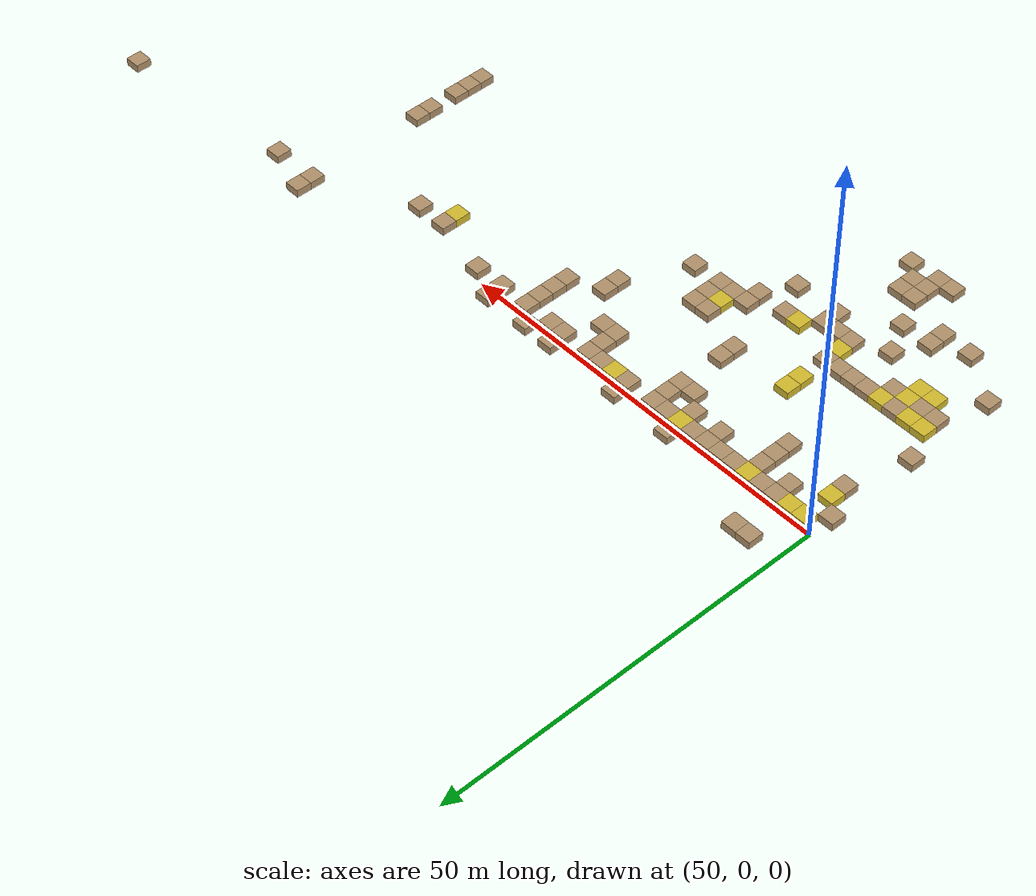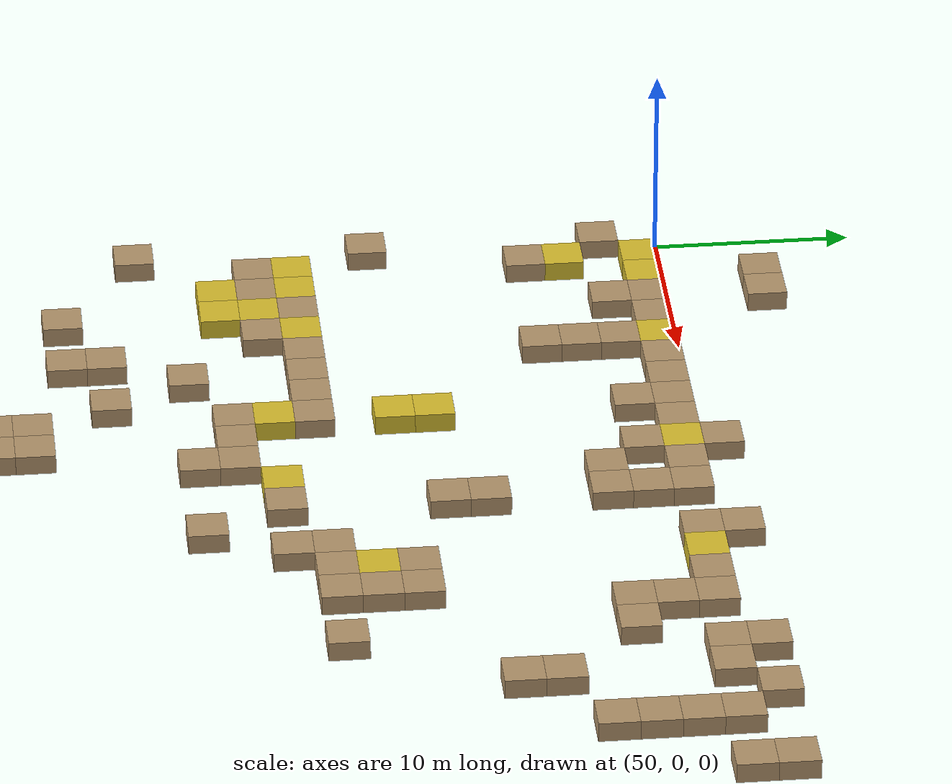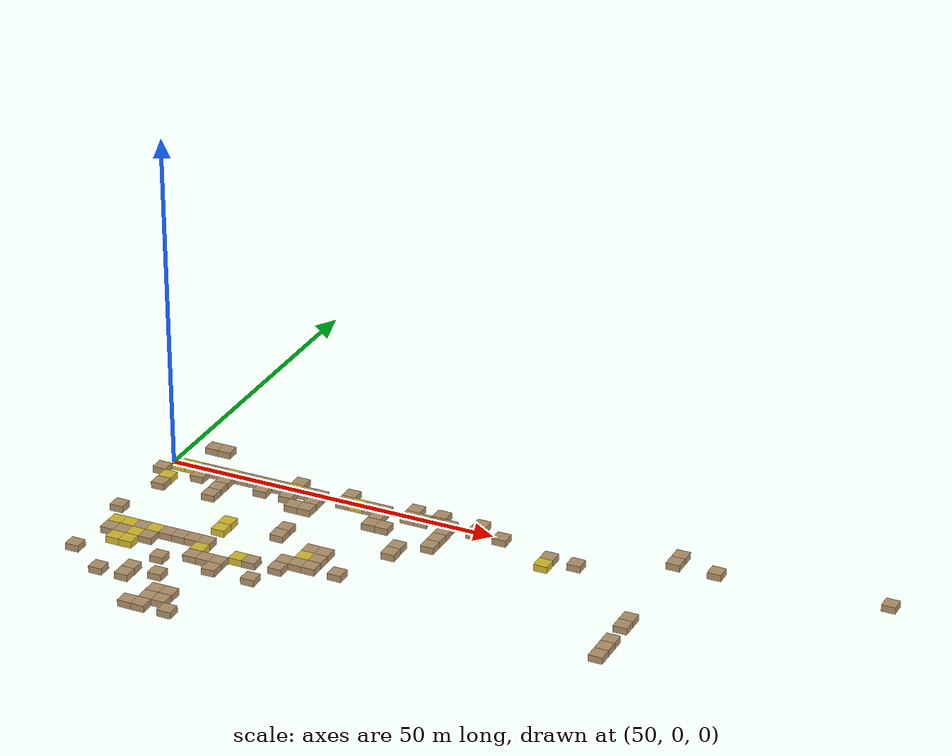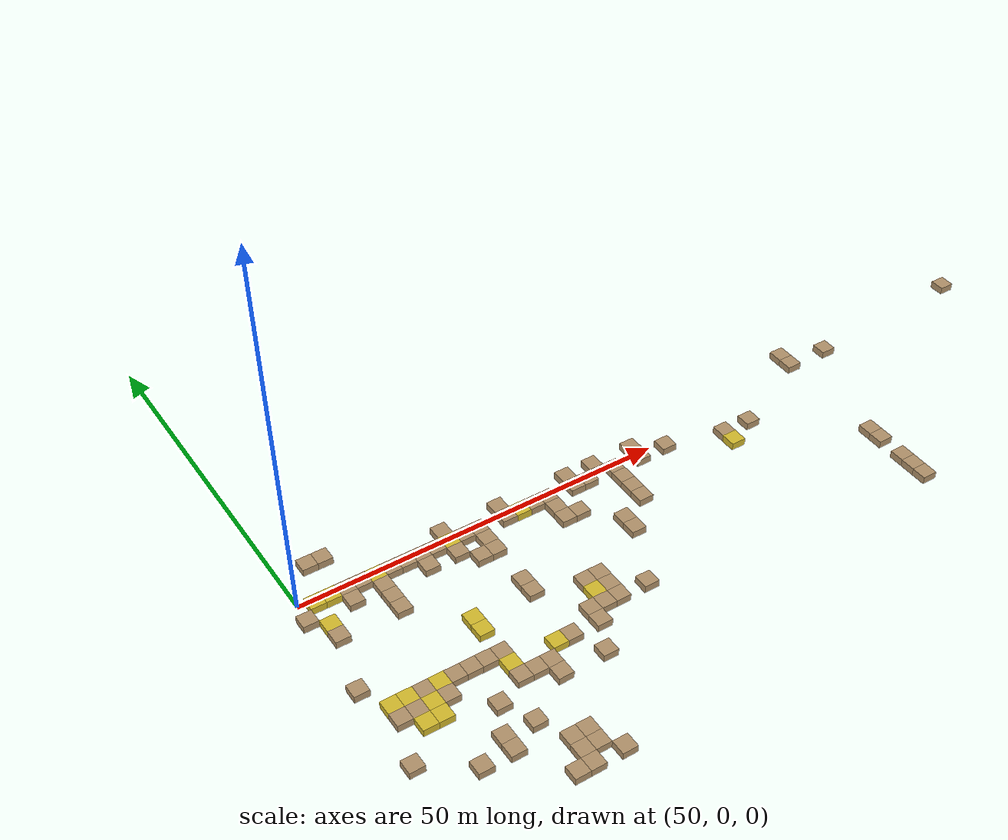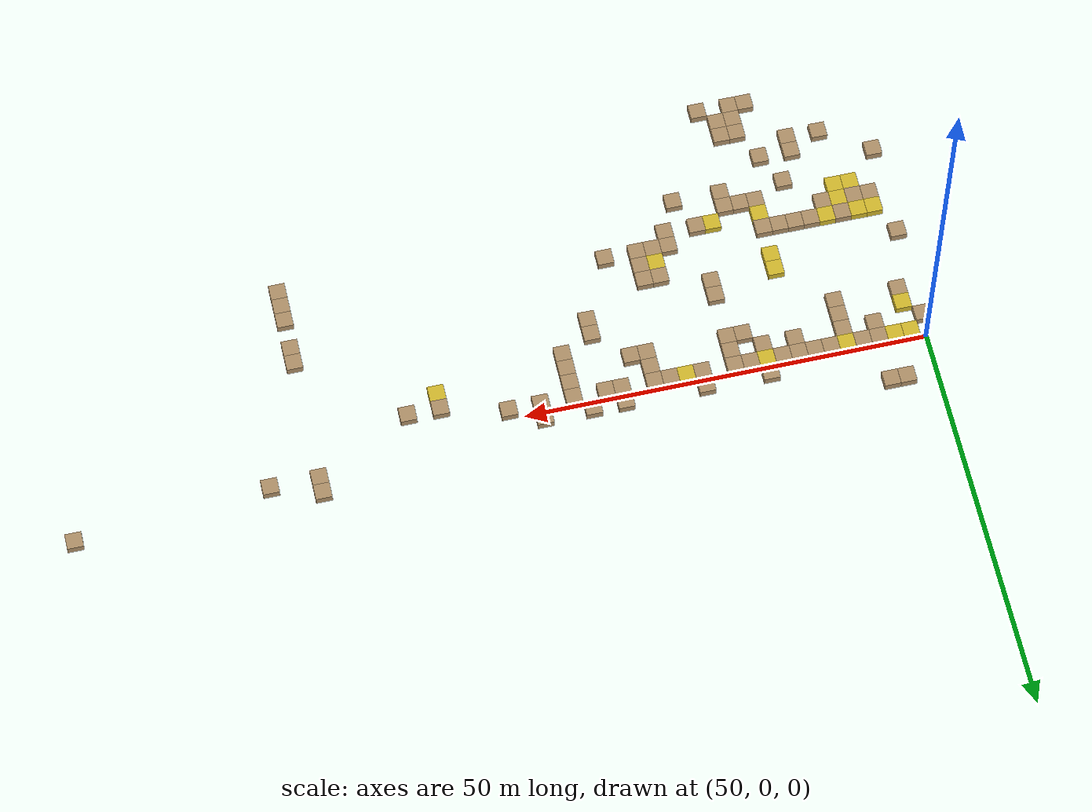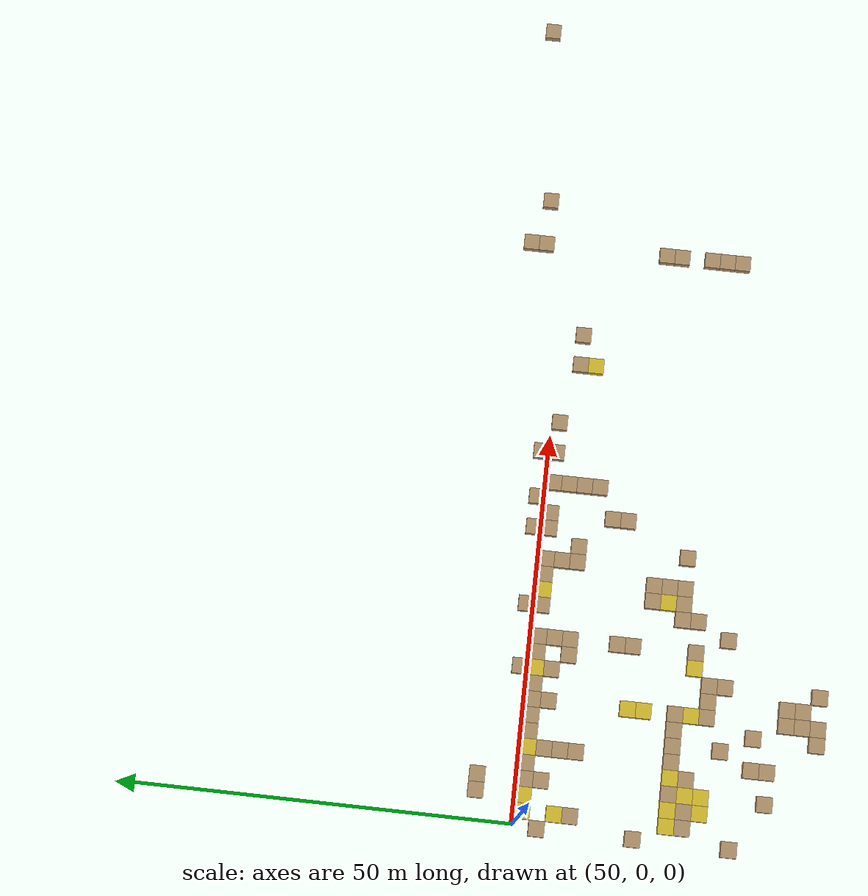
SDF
<sdf version="1.6">
 <world name="map5_factory_approx">
  <model name="map5_obstacle_blocks">
   <static>true</static>
   <link name="obs_0089_0030">
    <pose>69.790 -1.041 0.500 0 0 0</pose>
    <collision name="collision"><geometry><box><size>2.000 2.000 1.000</size></box></geometry></collision>
    <visual name="visual">
     <geometry><box><size>2.000 2.000 1.000</size></box></geometry>
     <material><ambient>0.84 0.74 0.18 1</ambient><diffuse>0.84 0.74 0.18 1</diffuse></material>
    </visual>
   </link>
   <link name="obs_0082_0040">
    <pose>55.790 -21.041 0.500 0 0 0</pose>
    <collision name="collision"><geometry><box><size>2.000 2.000 1.000</size></box></geometry></collision>
    <visual name="visual">
     <geometry><box><size>2.000 2.000 1.000</size></box></geometry>
     <material><ambient>0.84 0.74 0.18 1</ambient><diffuse>0.84 0.74 0.18 1</diffuse></material>
    </visual>
   </link>
   <link name="obs_0094_0038">
    <pose>79.790 -17.041 0.500 0 0 0</pose>
    <collision name="collision"><geometry><box><size>2.000 2.000 1.000</size></box></geometry></collision>
    <visual name="visual">
     <geometry><box><size>2.000 2.000 1.000</size></box></geometry>
     <material><ambient>0.84 0.74 0.18 1</ambient><diffuse>0.84 0.74 0.18 1</diffuse></material>
    </visual>
   </link>
   <link name="obs_0084_0030">
    <pose>59.790 -1.041 0.500 0 0 0</pose>
    <collision name="collision"><geometry><box><size>2.000 2.000 1.000</size></box></geometry></collision>
    <visual name="visual">
     <geometry><box><size>2.000 2.000 1.000</size></box></geometry>
     <material><ambient>0.84 0.74 0.18 1</ambient><diffuse>0.84 0.74 0.18 1</diffuse></material>
    </visual>
   </link>
   <link name="obs_0094_0030">
    <pose>79.790 -1.041 0.500 0 0 0</pose>
    <collision name="collision"><geometry><box><size>2.000 2.000 1.000</size></box></geometry></collision>
    <visual name="visual">
     <geometry><box><size>2.000 2.000 1.000</size></box></geometry>
     <material><ambient>0.84 0.74 0.18 1</ambient><diffuse>0.84 0.74 0.18 1</diffuse></material>
    </visual>
   </link>
   <link name="obs_0080_0032">
    <pose>51.790 -5.041 0.500 0 0 0</pose>
    <collision name="collision"><geometry><box><size>2.000 2.000 1.000</size></box></geometry></collision>
    <visual name="visual">
     <geometry><box><size>2.000 2.000 1.000</size></box></geometry>
     <material><ambient>0.84 0.74 0.18 1</ambient><diffuse>0.84 0.74 0.18 1</diffuse></material>
    </visual>
   </link>
   <link name="obs_0082_0041">
    <pose>55.790 -23.041 0.500 0 0 0</pose>
    <collision name="collision"><geometry><box><size>2.000 2.000 1.000</size></box></geometry></collision>
    <visual name="visual">
     <geometry><box><size>2.000 2.000 1.000</size></box></geometry>
     <material><ambient>0.84 0.74 0.18 1</ambient><diffuse>0.84 0.74 0.18 1</diffuse></material>
    </visual>
   </link>
   <link name="obs_0081_0041">
    <pose>53.790 -23.041 0.500 0 0 0</pose>
    <collision name="collision"><geometry><box><size>2.000 2.000 1.000</size></box></geometry></collision>
    <visual name="visual">
     <geometry><box><size>2.000 2.000 1.000</size></box></geometry>
     <material><ambient>0.84 0.74 0.18 1</ambient><diffuse>0.84 0.74 0.18 1</diffuse></material>
    </visual>
   </link>
   <link name="obs_0109_0032">
    <pose>109.790 -5.041 0.500 0 0 0</pose>
    <collision name="collision"><geometry><box><size>2.000 2.000 1.000</size></box></geometry></collision>
    <visual name="visual">
     <geometry><box><size>2.000 2.000 1.000</size></box></geometry>
     <material><ambient>0.84 0.74 0.18 1</ambient><diffuse>0.84 0.74 0.18 1</diffuse></material>
    </visual>
   </link>
   <link name="obs_0081_0039">
    <pose>53.790 -19.041 0.500 0 0 0</pose>
    <collision name="collision"><geometry><box><size>2.000 2.000 1.000</size></box></geometry></collision>
    <visual name="visual">
     <geometry><box><size>2.000 2.000 1.000</size></box></geometry>
     <material><ambient>0.84 0.74 0.18 1</ambient><diffuse>0.84 0.74 0.18 1</diffuse></material>
    </visual>
   </link>
   <link name="obs_0087_0040">
    <pose>65.790 -21.041 0.500 0 0 0</pose>
    <collision name="collision"><geometry><box><size>2.000 2.000 1.000</size></box></geometry></collision>
    <visual name="visual">
     <geometry><box><size>2.000 2.000 1.000</size></box></geometry>
     <material><ambient>0.84 0.74 0.18 1</ambient><diffuse>0.84 0.74 0.18 1</diffuse></material>
    </visual>
   </link>
   <link name="obs_0087_0037">
    <pose>65.790 -15.041 0.500 0 0 0</pose>
    <collision name="collision"><geometry><box><size>2.000 2.000 1.000</size></box></geometry></collision>
    <visual name="visual">
     <geometry><box><size>2.000 2.000 1.000</size></box></geometry>
     <material><ambient>0.84 0.74 0.18 1</ambient><diffuse>0.84 0.74 0.18 1</diffuse></material>
    </visual>
   </link>
   <link name="obs_0087_0036">
    <pose>65.790 -13.041 0.500 0 0 0</pose>
    <collision name="collision"><geometry><box><size>2.000 2.000 1.000</size></box></geometry></collision>
    <visual name="visual">
     <geometry><box><size>2.000 2.000 1.000</size></box></geometry>
     <material><ambient>0.84 0.74 0.18 1</ambient><diffuse>0.84 0.74 0.18 1</diffuse></material>
    </visual>
   </link>
   <link name="obs_0080_0030">
    <pose>51.790 -1.041 0.500 0 0 0</pose>
    <collision name="collision"><geometry><box><size>2.000 2.000 1.000</size></box></geometry></collision>
    <visual name="visual">
     <geometry><box><size>2.000 2.000 1.000</size></box></geometry>
     <material><ambient>0.84 0.74 0.18 1</ambient><diffuse>0.84 0.74 0.18 1</diffuse></material>
    </visual>
   </link>
   <link name="obs_0083_0039">
    <pose>57.790 -19.041 0.500 0 0 0</pose>
    <collision name="collision"><geometry><box><size>2.000 2.000 1.000</size></box></geometry></collision>
    <visual name="visual">
     <geometry><box><size>2.000 2.000 1.000</size></box></geometry>
     <material><ambient>0.84 0.74 0.18 1</ambient><diffuse>0.84 0.74 0.18 1</diffuse></material>
    </visual>
   </link>
   <link name="obs_0080_0039">
    <pose>51.790 -19.041 0.500 0 0 0</pose>
    <collision name="collision"><geometry><box><size>2.000 2.000 1.000</size></box></geometry></collision>
    <visual name="visual">
     <geometry><box><size>2.000 2.000 1.000</size></box></geometry>
     <material><ambient>0.84 0.74 0.18 1</ambient><diffuse>0.84 0.74 0.18 1</diffuse></material>
    </visual>
   </link>
   <link name="obs_0090_0040">
    <pose>71.790 -21.041 0.500 0 0 0</pose>
    <collision name="collision"><geometry><box><size>2.000 2.000 1.000</size></box></geometry></collision>
    <visual name="visual">
     <geometry><box><size>2.000 2.000 1.000</size></box></geometry>
     <material><ambient>0.84 0.74 0.18 1</ambient><diffuse>0.84 0.74 0.18 1</diffuse></material>
    </visual>
   </link>
   <link name="obs_0081_0030">
    <pose>53.790 -1.041 0.500 0 0 0</pose>
    <collision name="collision"><geometry><box><size>2.000 2.000 1.000</size></box></geometry></collision>
    <visual name="visual">
     <geometry><box><size>2.000 2.000 1.000</size></box></geometry>
     <material><ambient>0.84 0.74 0.18 1</ambient><diffuse>0.84 0.74 0.18 1</diffuse></material>
    </visual>
   </link>
   <link name="obs_0099_0030">
    <pose>89.790 -1.041 0.500 0 0 0</pose>
    <collision name="collision"><geometry><box><size>2.000 2.000 1.000</size></box></geometry></collision>
    <visual name="visual">
     <geometry><box><size>2.000 2.000 1.000</size></box></geometry>
     <material><ambient>0.70 0.58 0.42 1</ambient><diffuse>0.70 0.58 0.42 1</diffuse></material>
    </visual>
   </link>
   <link name="obs_0094_0037">
    <pose>79.790 -15.041 0.500 0 0 0</pose>
    <collision name="collision"><geometry><box><size>2.000 2.000 1.000</size></box></geometry></collision>
    <visual name="visual">
     <geometry><box><size>2.000 2.000 1.000</size></box></geometry>
     <material><ambient>0.70 0.58 0.42 1</ambient><diffuse>0.70 0.58 0.42 1</diffuse></material>
    </visual>
   </link>
   <link name="obs_0086_0030">
    <pose>63.790 -1.041 0.500 0 0 0</pose>
    <collision name="collision"><geometry><box><size>2.000 2.000 1.000</size></box></geometry></collision>
    <visual name="visual">
     <geometry><box><size>2.000 2.000 1.000</size></box></geometry>
     <material><ambient>0.70 0.58 0.42 1</ambient><diffuse>0.70 0.58 0.42 1</diffuse></material>
    </visual>
   </link>
   <link name="obs_0081_0040">
    <pose>53.790 -21.041 0.500 0 0 0</pose>
    <collision name="collision"><geometry><box><size>2.000 2.000 1.000</size></box></geometry></collision>
    <visual name="visual">
     <geometry><box><size>2.000 2.000 1.000</size></box></geometry>
     <material><ambient>0.70 0.58 0.42 1</ambient><diffuse>0.70 0.58 0.42 1</diffuse></material>
    </visual>
   </link>
   <link name="obs_0091_0030">
    <pose>73.790 -1.041 0.500 0 0 0</pose>
    <collision name="collision"><geometry><box><size>2.000 2.000 1.000</size></box></geometry></collision>
    <visual name="visual">
     <geometry><box><size>2.000 2.000 1.000</size></box></geometry>
     <material><ambient>0.70 0.58 0.42 1</ambient><diffuse>0.70 0.58 0.42 1</diffuse></material>
    </visual>
   </link>
   <link name="obs_0091_0036">
    <pose>73.790 -13.041 0.500 0 0 0</pose>
    <collision name="collision"><geometry><box><size>2.000 2.000 1.000</size></box></geometry></collision>
    <visual name="visual">
     <geometry><box><size>2.000 2.000 1.000</size></box></geometry>
     <material><ambient>0.70 0.58 0.42 1</ambient><diffuse>0.70 0.58 0.42 1</diffuse></material>
    </visual>
   </link>
   <link name="obs_0082_0039">
    <pose>55.790 -19.041 0.500 0 0 0</pose>
    <collision name="collision"><geometry><box><size>2.000 2.000 1.000</size></box></geometry></collision>
    <visual name="visual">
     <geometry><box><size>2.000 2.000 1.000</size></box></geometry>
     <material><ambient>0.70 0.58 0.42 1</ambient><diffuse>0.70 0.58 0.42 1</diffuse></material>
    </visual>
   </link>
   <link name="obs_0079_0031">
    <pose>49.790 -3.041 0.500 0 0 0</pose>
    <collision name="collision"><geometry><box><size>2.000 2.000 1.000</size></box></geometry></collision>
    <visual name="visual">
     <geometry><box><size>2.000 2.000 1.000</size></box></geometry>
     <material><ambient>0.70 0.58 0.42 1</ambient><diffuse>0.70 0.58 0.42 1</diffuse></material>
    </visual>
   </link>
   <link name="obs_0095_0037">
    <pose>81.790 -15.041 0.500 0 0 0</pose>
    <collision name="collision"><geometry><box><size>2.000 2.000 1.000</size></box></geometry></collision>
    <visual name="visual">
     <geometry><box><size>2.000 2.000 1.000</size></box></geometry>
     <material><ambient>0.70 0.58 0.42 1</ambient><diffuse>0.70 0.58 0.42 1</diffuse></material>
    </visual>
   </link>
   <link name="obs_0091_0032">
    <pose>73.790 -5.041 0.500 0 0 0</pose>
    <collision name="collision"><geometry><box><size>2.000 2.000 1.000</size></box></geometry></collision>
    <visual name="visual">
     <geometry><box><size>2.000 2.000 1.000</size></box></geometry>
     <material><ambient>0.70 0.58 0.42 1</ambient><diffuse>0.70 0.58 0.42 1</diffuse></material>
    </visual>
   </link>
   <link name="obs_0099_0034">
    <pose>89.790 -9.041 0.500 0 0 0</pose>
    <collision name="collision"><geometry><box><size>2.000 2.000 1.000</size></box></geometry></collision>
    <visual name="visual">
     <geometry><box><size>2.000 2.000 1.000</size></box></geometry>
     <material><ambient>0.70 0.58 0.42 1</ambient><diffuse>0.70 0.58 0.42 1</diffuse></material>
    </visual>
   </link>
   <link name="obs_0082_0030">
    <pose>55.790 -1.041 0.500 0 0 0</pose>
    <collision name="collision"><geometry><box><size>2.000 2.000 1.000</size></box></geometry></collision>
    <visual name="visual">
     <geometry><box><size>2.000 2.000 1.000</size></box></geometry>
     <material><ambient>0.70 0.58 0.42 1</ambient><diffuse>0.70 0.58 0.42 1</diffuse></material>
    </visual>
   </link>
   <link name="obs_0096_0030">
    <pose>83.790 -1.041 0.500 0 0 0</pose>
    <collision name="collision"><geometry><box><size>2.000 2.000 1.000</size></box></geometry></collision>
    <visual name="visual">
     <geometry><box><size>2.000 2.000 1.000</size></box></geometry>
     <material><ambient>0.70 0.58 0.42 1</ambient><diffuse>0.70 0.58 0.42 1</diffuse></material>
    </visual>
   </link>
   <link name="obs_0084_0039">
    <pose>59.790 -19.041 0.500 0 0 0</pose>
    <collision name="collision"><geometry><box><size>2.000 2.000 1.000</size></box></geometry></collision>
    <visual name="visual">
     <geometry><box><size>2.000 2.000 1.000</size></box></geometry>
     <material><ambient>0.70 0.58 0.42 1</ambient><diffuse>0.70 0.58 0.42 1</diffuse></material>
    </visual>
   </link>
   <link name="obs_0117_0040">
    <pose>125.790 -21.041 0.500 0 0 0</pose>
    <collision name="collision"><geometry><box><size>2.000 2.000 1.000</size></box></geometry></collision>
    <visual name="visual">
     <geometry><box><size>2.000 2.000 1.000</size></box></geometry>
     <material><ambient>0.70 0.58 0.42 1</ambient><diffuse>0.70 0.58 0.42 1</diffuse></material>
    </visual>
   </link>
   <link name="obs_0085_0030">
    <pose>61.790 -1.041 0.500 0 0 0</pose>
    <collision name="collision"><geometry><box><size>2.000 2.000 1.000</size></box></geometry></collision>
    <visual name="visual">
     <geometry><box><size>2.000 2.000 1.000</size></box></geometry>
     <material><ambient>0.70 0.58 0.42 1</ambient><diffuse>0.70 0.58 0.42 1</diffuse></material>
    </visual>
   </link>
   <link name="obs_0082_0031">
    <pose>55.790 -3.041 0.500 0 0 0</pose>
    <collision name="collision"><geometry><box><size>2.000 2.000 1.000</size></box></geometry></collision>
    <visual name="visual">
     <geometry><box><size>2.000 2.000 1.000</size></box></geometry>
     <material><ambient>0.70 0.58 0.42 1</ambient><diffuse>0.70 0.58 0.42 1</diffuse></material>
    </visual>
   </link>
   <link name="obs_0103_0029">
    <pose>97.790 0.959 0.500 0 0 0</pose>
    <collision name="collision"><geometry><box><size>2.000 2.000 1.000</size></box></geometry></collision>
    <visual name="visual">
     <geometry><box><size>2.000 2.000 1.000</size></box></geometry>
     <material><ambient>0.70 0.58 0.42 1</ambient><diffuse>0.70 0.58 0.42 1</diffuse></material>
    </visual>
   </link>
   <link name="obs_0101_0032">
    <pose>93.790 -5.041 0.500 0 0 0</pose>
    <collision name="collision"><geometry><box><size>2.000 2.000 1.000</size></box></geometry></collision>
    <visual name="visual">
     <geometry><box><size>2.000 2.000 1.000</size></box></geometry>
     <material><ambient>0.70 0.58 0.42 1</ambient><diffuse>0.70 0.58 0.42 1</diffuse></material>
    </visual>
   </link>
   <link name="obs_0095_0039">
    <pose>81.790 -19.041 0.500 0 0 0</pose>
    <collision name="collision"><geometry><box><size>2.000 2.000 1.000</size></box></geometry></collision>
    <visual name="visual">
     <geometry><box><size>2.000 2.000 1.000</size></box></geometry>
     <material><ambient>0.70 0.58 0.42 1</ambient><diffuse>0.70 0.58 0.42 1</diffuse></material>
    </visual>
   </link>
   <link name="obs_0088_0030">
    <pose>67.790 -1.041 0.500 0 0 0</pose>
    <collision name="collision"><geometry><box><size>2.000 2.000 1.000</size></box></geometry></collision>
    <visual name="visual">
     <geometry><box><size>2.000 2.000 1.000</size></box></geometry>
     <material><ambient>0.70 0.58 0.42 1</ambient><diffuse>0.70 0.58 0.42 1</diffuse></material>
    </visual>
   </link>
   <link name="obs_0082_0045">
    <pose>55.790 -31.041 0.500 0 0 0</pose>
    <collision name="collision"><geometry><box><size>2.000 2.000 1.000</size></box></geometry></collision>
    <visual name="visual">
     <geometry><box><size>2.000 2.000 1.000</size></box></geometry>
     <material><ambient>0.70 0.58 0.42 1</ambient><diffuse>0.70 0.58 0.42 1</diffuse></material>
    </visual>
   </link>
   <link name="obs_0094_0039">
    <pose>79.790 -19.041 0.500 0 0 0</pose>
    <collision name="collision"><geometry><box><size>2.000 2.000 1.000</size></box></geometry></collision>
    <visual name="visual">
     <geometry><box><size>2.000 2.000 1.000</size></box></geometry>
     <material><ambient>0.70 0.58 0.42 1</ambient><diffuse>0.70 0.58 0.42 1</diffuse></material>
    </visual>
   </link>
   <link name="obs_0090_0030">
    <pose>71.790 -1.041 0.500 0 0 0</pose>
    <collision name="collision"><geometry><box><size>2.000 2.000 1.000</size></box></geometry></collision>
    <visual name="visual">
     <geometry><box><size>2.000 2.000 1.000</size></box></geometry>
     <material><ambient>0.70 0.58 0.42 1</ambient><diffuse>0.70 0.58 0.42 1</diffuse></material>
    </visual>
   </link>
   <link name="obs_0117_0036">
    <pose>125.790 -13.041 0.500 0 0 0</pose>
    <collision name="collision"><geometry><box><size>2.000 2.000 1.000</size></box></geometry></collision>
    <visual name="visual">
     <geometry><box><size>2.000 2.000 1.000</size></box></geometry>
     <material><ambient>0.70 0.58 0.42 1</ambient><diffuse>0.70 0.58 0.42 1</diffuse></material>
    </visual>
   </link>
   <link name="obs_0087_0039">
    <pose>65.790 -19.041 0.500 0 0 0</pose>
    <collision name="collision"><geometry><box><size>2.000 2.000 1.000</size></box></geometry></collision>
    <visual name="visual">
     <geometry><box><size>2.000 2.000 1.000</size></box></geometry>
     <material><ambient>0.70 0.58 0.42 1</ambient><diffuse>0.70 0.58 0.42 1</diffuse></material>
    </visual>
   </link>
   <link name="obs_0084_0031">
    <pose>59.790 -3.041 0.500 0 0 0</pose>
    <collision name="collision"><geometry><box><size>2.000 2.000 1.000</size></box></geometry></collision>
    <visual name="visual">
     <geometry><box><size>2.000 2.000 1.000</size></box></geometry>
     <material><ambient>0.70 0.58 0.42 1</ambient><diffuse>0.70 0.58 0.42 1</diffuse></material>
    </visual>
   </link>
   <link name="obs_0083_0030">
    <pose>57.790 -1.041 0.500 0 0 0</pose>
    <collision name="collision"><geometry><box><size>2.000 2.000 1.000</size></box></geometry></collision>
    <visual name="visual">
     <geometry><box><size>2.000 2.000 1.000</size></box></geometry>
     <material><ambient>0.70 0.58 0.42 1</ambient><diffuse>0.70 0.58 0.42 1</diffuse></material>
    </visual>
   </link>
   <link name="obs_0096_0031">
    <pose>83.790 -3.041 0.500 0 0 0</pose>
    <collision name="collision"><geometry><box><size>2.000 2.000 1.000</size></box></geometry></collision>
    <visual name="visual">
     <geometry><box><size>2.000 2.000 1.000</size></box></geometry>
     <material><ambient>0.70 0.58 0.42 1</ambient><diffuse>0.70 0.58 0.42 1</diffuse></material>
    </visual>
   </link>
   <link name="obs_0085_0039">
    <pose>61.790 -19.041 0.500 0 0 0</pose>
    <collision name="collision"><geometry><box><size>2.000 2.000 1.000</size></box></geometry></collision>
    <visual name="visual">
     <geometry><box><size>2.000 2.000 1.000</size></box></geometry>
     <material><ambient>0.70 0.58 0.42 1</ambient><diffuse>0.70 0.58 0.42 1</diffuse></material>
    </visual>
   </link>
   <link name="obs_0105_0030">
    <pose>101.790 -1.041 0.500 0 0 0</pose>
    <collision name="collision"><geometry><box><size>2.000 2.000 1.000</size></box></geometry></collision>
    <visual name="visual">
     <geometry><box><size>2.000 2.000 1.000</size></box></geometry>
     <material><ambient>0.70 0.58 0.42 1</ambient><diffuse>0.70 0.58 0.42 1</diffuse></material>
    </visual>
   </link>
   <link name="obs_0109_0031">
    <pose>109.790 -3.041 0.500 0 0 0</pose>
    <collision name="collision"><geometry><box><size>2.000 2.000 1.000</size></box></geometry></collision>
    <visual name="visual">
     <geometry><box><size>2.000 2.000 1.000</size></box></geometry>
     <material><ambient>0.70 0.58 0.42 1</ambient><diffuse>0.70 0.58 0.42 1</diffuse></material>
    </visual>
   </link>
   <link name="obs_0080_0040">
    <pose>51.790 -21.041 0.500 0 0 0</pose>
    <collision name="collision"><geometry><box><size>2.000 2.000 1.000</size></box></geometry></collision>
    <visual name="visual">
     <geometry><box><size>2.000 2.000 1.000</size></box></geometry>
     <material><ambient>0.70 0.58 0.42 1</ambient><diffuse>0.70 0.58 0.42 1</diffuse></material>
    </visual>
   </link>
   <link name="obs_0098_0029">
    <pose>87.790 0.959 0.500 0 0 0</pose>
    <collision name="collision"><geometry><box><size>2.000 2.000 1.000</size></box></geometry></collision>
    <visual name="visual">
     <geometry><box><size>2.000 2.000 1.000</size></box></geometry>
     <material><ambient>0.70 0.58 0.42 1</ambient><diffuse>0.70 0.58 0.42 1</diffuse></material>
    </visual>
   </link>
   <link name="obs_0096_0032">
    <pose>83.790 -5.041 0.500 0 0 0</pose>
    <collision name="collision"><geometry><box><size>2.000 2.000 1.000</size></box></geometry></collision>
    <visual name="visual">
     <geometry><box><size>2.000 2.000 1.000</size></box></geometry>
     <material><ambient>0.70 0.58 0.42 1</ambient><diffuse>0.70 0.58 0.42 1</diffuse></material>
    </visual>
   </link>
   <link name="obs_0091_0031">
    <pose>73.790 -3.041 0.500 0 0 0</pose>
    <collision name="collision"><geometry><box><size>2.000 2.000 1.000</size></box></geometry></collision>
    <visual name="visual">
     <geometry><box><size>2.000 2.000 1.000</size></box></geometry>
     <material><ambient>0.70 0.58 0.42 1</ambient><diffuse>0.70 0.58 0.42 1</diffuse></material>
    </visual>
   </link>
   <link name="obs_0090_0032">
    <pose>71.790 -5.041 0.500 0 0 0</pose>
    <collision name="collision"><geometry><box><size>2.000 2.000 1.000</size></box></geometry></collision>
    <visual name="visual">
     <geometry><box><size>2.000 2.000 1.000</size></box></geometry>
     <material><ambient>0.70 0.58 0.42 1</ambient><diffuse>0.70 0.58 0.42 1</diffuse></material>
    </visual>
   </link>
   <link name="obs_0087_0031">
    <pose>65.790 -3.041 0.500 0 0 0</pose>
    <collision name="collision"><geometry><box><size>2.000 2.000 1.000</size></box></geometry></collision>
    <visual name="visual">
     <geometry><box><size>2.000 2.000 1.000</size></box></geometry>
     <material><ambient>0.70 0.58 0.42 1</ambient><diffuse>0.70 0.58 0.42 1</diffuse></material>
    </visual>
   </link>
   <link name="obs_0084_0032">
    <pose>59.790 -5.041 0.500 0 0 0</pose>
    <collision name="collision"><geometry><box><size>2.000 2.000 1.000</size></box></geometry></collision>
    <visual name="visual">
     <geometry><box><size>2.000 2.000 1.000</size></box></geometry>
     <material><ambient>0.70 0.58 0.42 1</ambient><diffuse>0.70 0.58 0.42 1</diffuse></material>
    </visual>
   </link>
   <link name="obs_0095_0038">
    <pose>81.790 -17.041 0.500 0 0 0</pose>
    <collision name="collision"><geometry><box><size>2.000 2.000 1.000</size></box></geometry></collision>
    <visual name="visual">
     <geometry><box><size>2.000 2.000 1.000</size></box></geometry>
     <material><ambient>0.70 0.58 0.42 1</ambient><diffuse>0.70 0.58 0.42 1</diffuse></material>
    </visual>
   </link>
   <link name="obs_0117_0037">
    <pose>125.790 -15.041 0.500 0 0 0</pose>
    <collision name="collision"><geometry><box><size>2.000 2.000 1.000</size></box></geometry></collision>
    <visual name="visual">
     <geometry><box><size>2.000 2.000 1.000</size></box></geometry>
     <material><ambient>0.70 0.58 0.42 1</ambient><diffuse>0.70 0.58 0.42 1</diffuse></material>
    </visual>
   </link>
   <link name="obs_0101_0031">
    <pose>93.790 -3.041 0.500 0 0 0</pose>
    <collision name="collision"><geometry><box><size>2.000 2.000 1.000</size></box></geometry></collision>
    <visual name="visual">
     <geometry><box><size>2.000 2.000 1.000</size></box></geometry>
     <material><ambient>0.70 0.58 0.42 1</ambient><diffuse>0.70 0.58 0.42 1</diffuse></material>
    </visual>
   </link>
   <link name="obs_0097_0032">
    <pose>85.790 -5.041 0.500 0 0 0</pose>
    <collision name="collision"><geometry><box><size>2.000 2.000 1.000</size></box></geometry></collision>
    <visual name="visual">
     <geometry><box><size>2.000 2.000 1.000</size></box></geometry>
     <material><ambient>0.70 0.58 0.42 1</ambient><diffuse>0.70 0.58 0.42 1</diffuse></material>
    </visual>
   </link>
   <link name="obs_0088_0041">
    <pose>67.790 -23.041 0.500 0 0 0</pose>
    <collision name="collision"><geometry><box><size>2.000 2.000 1.000</size></box></geometry></collision>
    <visual name="visual">
     <geometry><box><size>2.000 2.000 1.000</size></box></geometry>
     <material><ambient>0.70 0.58 0.42 1</ambient><diffuse>0.70 0.58 0.42 1</diffuse></material>
    </visual>
   </link>
   <link name="obs_0082_0027">
    <pose>55.790 4.959 0.500 0 0 0</pose>
    <collision name="collision"><geometry><box><size>2.000 2.000 1.000</size></box></geometry></collision>
    <visual name="visual">
     <geometry><box><size>2.000 2.000 1.000</size></box></geometry>
     <material><ambient>0.70 0.58 0.42 1</ambient><diffuse>0.70 0.58 0.42 1</diffuse></material>
    </visual>
   </link>
   <link name="obs_0117_0039">
    <pose>125.790 -19.041 0.500 0 0 0</pose>
    <collision name="collision"><geometry><box><size>2.000 2.000 1.000</size></box></geometry></collision>
    <visual name="visual">
     <geometry><box><size>2.000 2.000 1.000</size></box></geometry>
     <material><ambient>0.70 0.58 0.42 1</ambient><diffuse>0.70 0.58 0.42 1</diffuse></material>
    </visual>
   </link>
   <link name="obs_0101_0030">
    <pose>93.790 -1.041 0.500 0 0 0</pose>
    <collision name="collision"><geometry><box><size>2.000 2.000 1.000</size></box></geometry></collision>
    <visual name="visual">
     <geometry><box><size>2.000 2.000 1.000</size></box></geometry>
     <material><ambient>0.70 0.58 0.42 1</ambient><diffuse>0.70 0.58 0.42 1</diffuse></material>
    </visual>
   </link>
   <link name="obs_0093_0040">
    <pose>77.790 -21.041 0.500 0 0 0</pose>
    <collision name="collision"><geometry><box><size>2.000 2.000 1.000</size></box></geometry></collision>
    <visual name="visual">
     <geometry><box><size>2.000 2.000 1.000</size></box></geometry>
     <material><ambient>0.70 0.58 0.42 1</ambient><diffuse>0.70 0.58 0.42 1</diffuse></material>
    </visual>
   </link>
   <link name="obs_0089_0031">
    <pose>69.790 -3.041 0.500 0 0 0</pose>
    <collision name="collision"><geometry><box><size>2.000 2.000 1.000</size></box></geometry></collision>
    <visual name="visual">
     <geometry><box><size>2.000 2.000 1.000</size></box></geometry>
     <material><ambient>0.70 0.58 0.42 1</ambient><diffuse>0.70 0.58 0.42 1</diffuse></material>
    </visual>
   </link>
   <link name="obs_0093_0039">
    <pose>77.790 -19.041 0.500 0 0 0</pose>
    <collision name="collision"><geometry><box><size>2.000 2.000 1.000</size></box></geometry></collision>
    <visual name="visual">
     <geometry><box><size>2.000 2.000 1.000</size></box></geometry>
     <material><ambient>0.70 0.58 0.42 1</ambient><diffuse>0.70 0.58 0.42 1</diffuse></material>
    </visual>
   </link>
   <link name="obs_0093_0030">
    <pose>77.790 -1.041 0.500 0 0 0</pose>
    <collision name="collision"><geometry><box><size>2.000 2.000 1.000</size></box></geometry></collision>
    <visual name="visual">
     <geometry><box><size>2.000 2.000 1.000</size></box></geometry>
     <material><ambient>0.70 0.58 0.42 1</ambient><diffuse>0.70 0.58 0.42 1</diffuse></material>
    </visual>
   </link>
   <link name="obs_0088_0047">
    <pose>67.790 -35.041 0.500 0 0 0</pose>
    <collision name="collision"><geometry><box><size>2.000 2.000 1.000</size></box></geometry></collision>
    <visual name="visual">
     <geometry><box><size>2.000 2.000 1.000</size></box></geometry>
     <material><ambient>0.70 0.58 0.42 1</ambient><diffuse>0.70 0.58 0.42 1</diffuse></material>
    </visual>
   </link>
   <link name="obs_0087_0030">
    <pose>65.790 -1.041 0.500 0 0 0</pose>
    <collision name="collision"><geometry><box><size>2.000 2.000 1.000</size></box></geometry></collision>
    <visual name="visual">
     <geometry><box><size>2.000 2.000 1.000</size></box></geometry>
     <material><ambient>0.70 0.58 0.42 1</ambient><diffuse>0.70 0.58 0.42 1</diffuse></material>
    </visual>
   </link>
   <link name="obs_0097_0039">
    <pose>85.790 -19.041 0.500 0 0 0</pose>
    <collision name="collision"><geometry><box><size>2.000 2.000 1.000</size></box></geometry></collision>
    <visual name="visual">
     <geometry><box><size>2.000 2.000 1.000</size></box></geometry>
     <material><ambient>0.70 0.58 0.42 1</ambient><diffuse>0.70 0.58 0.42 1</diffuse></material>
    </visual>
   </link>
   <link name="obs_0084_0045">
    <pose>59.790 -31.041 0.500 0 0 0</pose>
    <collision name="collision"><geometry><box><size>2.000 2.000 1.000</size></box></geometry></collision>
    <visual name="visual">
     <geometry><box><size>2.000 2.000 1.000</size></box></geometry>
     <material><ambient>0.70 0.58 0.42 1</ambient><diffuse>0.70 0.58 0.42 1</diffuse></material>
    </visual>
   </link>
   <link name="obs_0120_0028">
    <pose>131.790 2.959 0.500 0 0 0</pose>
    <collision name="collision"><geometry><box><size>2.000 2.000 1.000</size></box></geometry></collision>
    <visual name="visual">
     <geometry><box><size>2.000 2.000 1.000</size></box></geometry>
     <material><ambient>0.70 0.58 0.42 1</ambient><diffuse>0.70 0.58 0.42 1</diffuse></material>
    </visual>
   </link>
   <link name="obs_0117_0028">
    <pose>125.790 2.959 0.500 0 0 0</pose>
    <collision name="collision"><geometry><box><size>2.000 2.000 1.000</size></box></geometry></collision>
    <visual name="visual">
     <geometry><box><size>2.000 2.000 1.000</size></box></geometry>
     <material><ambient>0.70 0.58 0.42 1</ambient><diffuse>0.70 0.58 0.42 1</diffuse></material>
    </visual>
   </link>
   <link name="obs_0098_0030">
    <pose>87.790 -1.041 0.500 0 0 0</pose>
    <collision name="collision"><geometry><box><size>2.000 2.000 1.000</size></box></geometry></collision>
    <visual name="visual">
     <geometry><box><size>2.000 2.000 1.000</size></box></geometry>
     <material><ambient>0.70 0.58 0.42 1</ambient><diffuse>0.70 0.58 0.42 1</diffuse></material>
    </visual>
   </link>
   <link name="obs_0081_0027">
    <pose>53.790 4.959 0.500 0 0 0</pose>
    <collision name="collision"><geometry><box><size>2.000 2.000 1.000</size></box></geometry></collision>
    <visual name="visual">
     <geometry><box><size>2.000 2.000 1.000</size></box></geometry>
     <material><ambient>0.70 0.58 0.42 1</ambient><diffuse>0.70 0.58 0.42 1</diffuse></material>
    </visual>
   </link>
   <link name="obs_0117_0027">
    <pose>125.790 4.959 0.500 0 0 0</pose>
    <collision name="collision"><geometry><box><size>2.000 2.000 1.000</size></box></geometry></collision>
    <visual name="visual">
     <geometry><box><size>2.000 2.000 1.000</size></box></geometry>
     <material><ambient>0.70 0.58 0.42 1</ambient><diffuse>0.70 0.58 0.42 1</diffuse></material>
    </visual>
   </link>
   <link name="obs_0092_0042">
    <pose>75.790 -25.041 0.500 0 0 0</pose>
    <collision name="collision"><geometry><box><size>2.000 2.000 1.000</size></box></geometry></collision>
    <visual name="visual">
     <geometry><box><size>2.000 2.000 1.000</size></box></geometry>
     <material><ambient>0.70 0.58 0.42 1</ambient><diffuse>0.70 0.58 0.42 1</diffuse></material>
    </visual>
   </link>
   <link name="obs_0091_0035">
    <pose>73.790 -11.041 0.500 0 0 0</pose>
    <collision name="collision"><geometry><box><size>2.000 2.000 1.000</size></box></geometry></collision>
    <visual name="visual">
     <geometry><box><size>2.000 2.000 1.000</size></box></geometry>
     <material><ambient>0.70 0.58 0.42 1</ambient><diffuse>0.70 0.58 0.42 1</diffuse></material>
    </visual>
   </link>
   <link name="obs_0087_0041">
    <pose>65.790 -23.041 0.500 0 0 0</pose>
    <collision name="collision"><geometry><box><size>2.000 2.000 1.000</size></box></geometry></collision>
    <visual name="visual">
     <geometry><box><size>2.000 2.000 1.000</size></box></geometry>
     <material><ambient>0.70 0.58 0.42 1</ambient><diffuse>0.70 0.58 0.42 1</diffuse></material>
    </visual>
   </link>
   <link name="obs_0086_0039">
    <pose>63.790 -19.041 0.500 0 0 0</pose>
    <collision name="collision"><geometry><box><size>2.000 2.000 1.000</size></box></geometry></collision>
    <visual name="visual">
     <geometry><box><size>2.000 2.000 1.000</size></box></geometry>
     <material><ambient>0.70 0.58 0.42 1</ambient><diffuse>0.70 0.58 0.42 1</diffuse></material>
    </visual>
   </link>
   <link name="obs_0103_0030">
    <pose>97.790 -1.041 0.500 0 0 0</pose>
    <collision name="collision"><geometry><box><size>2.000 2.000 1.000</size></box></geometry></collision>
    <visual name="visual">
     <geometry><box><size>2.000 2.000 1.000</size></box></geometry>
     <material><ambient>0.70 0.58 0.42 1</ambient><diffuse>0.70 0.58 0.42 1</diffuse></material>
    </visual>
   </link>
   <link name="obs_0099_0035">
    <pose>89.790 -11.041 0.500 0 0 0</pose>
    <collision name="collision"><geometry><box><size>2.000 2.000 1.000</size></box></geometry></collision>
    <visual name="visual">
     <geometry><box><size>2.000 2.000 1.000</size></box></geometry>
     <material><ambient>0.70 0.58 0.42 1</ambient><diffuse>0.70 0.58 0.42 1</diffuse></material>
    </visual>
   </link>
   <link name="obs_0091_0040">
    <pose>73.790 -21.041 0.500 0 0 0</pose>
    <collision name="collision"><geometry><box><size>2.000 2.000 1.000</size></box></geometry></collision>
    <visual name="visual">
     <geometry><box><size>2.000 2.000 1.000</size></box></geometry>
     <material><ambient>0.70 0.58 0.42 1</ambient><diffuse>0.70 0.58 0.42 1</diffuse></material>
    </visual>
   </link>
   <link name="obs_0089_0048">
    <pose>69.790 -37.041 0.500 0 0 0</pose>
    <collision name="collision"><geometry><box><size>2.000 2.000 1.000</size></box></geometry></collision>
    <visual name="visual">
     <geometry><box><size>2.000 2.000 1.000</size></box></geometry>
     <material><ambient>0.70 0.58 0.42 1</ambient><diffuse>0.70 0.58 0.42 1</diffuse></material>
    </visual>
   </link>
   <link name="obs_0086_0048">
    <pose>63.790 -37.041 0.500 0 0 0</pose>
    <collision name="collision"><geometry><box><size>2.000 2.000 1.000</size></box></geometry></collision>
    <visual name="visual">
     <geometry><box><size>2.000 2.000 1.000</size></box></geometry>
     <material><ambient>0.70 0.58 0.42 1</ambient><diffuse>0.70 0.58 0.42 1</diffuse></material>
    </visual>
   </link>
   <link name="obs_0084_0033">
    <pose>59.790 -7.041 0.500 0 0 0</pose>
    <collision name="collision"><geometry><box><size>2.000 2.000 1.000</size></box></geometry></collision>
    <visual name="visual">
     <geometry><box><size>2.000 2.000 1.000</size></box></geometry>
     <material><ambient>0.70 0.58 0.42 1</ambient><diffuse>0.70 0.58 0.42 1</diffuse></material>
    </visual>
   </link>
   <link name="obs_0089_0042">
    <pose>69.790 -25.041 0.500 0 0 0</pose>
    <collision name="collision"><geometry><box><size>2.000 2.000 1.000</size></box></geometry></collision>
    <visual name="visual">
     <geometry><box><size>2.000 2.000 1.000</size></box></geometry>
     <material><ambient>0.70 0.58 0.42 1</ambient><diffuse>0.70 0.58 0.42 1</diffuse></material>
    </visual>
   </link>
   <link name="obs_0087_0046">
    <pose>65.790 -33.041 0.500 0 0 0</pose>
    <collision name="collision"><geometry><box><size>2.000 2.000 1.000</size></box></geometry></collision>
    <visual name="visual">
     <geometry><box><size>2.000 2.000 1.000</size></box></geometry>
     <material><ambient>0.70 0.58 0.42 1</ambient><diffuse>0.70 0.58 0.42 1</diffuse></material>
    </visual>
   </link>
   <link name="obs_0079_0043">
    <pose>49.790 -27.041 0.500 0 0 0</pose>
    <collision name="collision"><geometry><box><size>2.000 2.000 1.000</size></box></geometry></collision>
    <visual name="visual">
     <geometry><box><size>2.000 2.000 1.000</size></box></geometry>
     <material><ambient>0.70 0.58 0.42 1</ambient><diffuse>0.70 0.58 0.42 1</diffuse></material>
    </visual>
   </link>
   <link name="obs_0079_0037">
    <pose>49.790 -15.041 0.500 0 0 0</pose>
    <collision name="collision"><geometry><box><size>2.000 2.000 1.000</size></box></geometry></collision>
    <visual name="visual">
     <geometry><box><size>2.000 2.000 1.000</size></box></geometry>
     <material><ambient>0.70 0.58 0.42 1</ambient><diffuse>0.70 0.58 0.42 1</diffuse></material>
    </visual>
   </link>
   <link name="obs_0111_0031">
    <pose>113.790 -3.041 0.500 0 0 0</pose>
    <collision name="collision"><geometry><box><size>2.000 2.000 1.000</size></box></geometry></collision>
    <visual name="visual">
     <geometry><box><size>2.000 2.000 1.000</size></box></geometry>
     <material><ambient>0.70 0.58 0.42 1</ambient><diffuse>0.70 0.58 0.42 1</diffuse></material>
    </visual>
   </link>
   <link name="obs_0095_0030">
    <pose>81.790 -1.041 0.500 0 0 0</pose>
    <collision name="collision"><geometry><box><size>2.000 2.000 1.000</size></box></geometry></collision>
    <visual name="visual">
     <geometry><box><size>2.000 2.000 1.000</size></box></geometry>
     <material><ambient>0.70 0.58 0.42 1</ambient><diffuse>0.70 0.58 0.42 1</diffuse></material>
    </visual>
   </link>
   <link name="obs_0087_0047">
    <pose>65.790 -35.041 0.500 0 0 0</pose>
    <collision name="collision"><geometry><box><size>2.000 2.000 1.000</size></box></geometry></collision>
    <visual name="visual">
     <geometry><box><size>2.000 2.000 1.000</size></box></geometry>
     <material><ambient>0.70 0.58 0.42 1</ambient><diffuse>0.70 0.58 0.42 1</diffuse></material>
    </visual>
   </link>
   <link name="obs_0085_0042">
    <pose>61.790 -25.041 0.500 0 0 0</pose>
    <collision name="collision"><geometry><box><size>2.000 2.000 1.000</size></box></geometry></collision>
    <visual name="visual">
     <geometry><box><size>2.000 2.000 1.000</size></box></geometry>
     <material><ambient>0.70 0.58 0.42 1</ambient><diffuse>0.70 0.58 0.42 1</diffuse></material>
    </visual>
   </link>
   <link name="obs_0087_0048">
    <pose>65.790 -37.041 0.500 0 0 0</pose>
    <collision name="collision"><geometry><box><size>2.000 2.000 1.000</size></box></geometry></collision>
    <visual name="visual">
     <geometry><box><size>2.000 2.000 1.000</size></box></geometry>
     <material><ambient>0.70 0.58 0.42 1</ambient><diffuse>0.70 0.58 0.42 1</diffuse></material>
    </visual>
   </link>
   <link name="obs_0083_0040">
    <pose>57.790 -21.041 0.500 0 0 0</pose>
    <collision name="collision"><geometry><box><size>2.000 2.000 1.000</size></box></geometry></collision>
    <visual name="visual">
     <geometry><box><size>2.000 2.000 1.000</size></box></geometry>
     <material><ambient>0.70 0.58 0.42 1</ambient><diffuse>0.70 0.58 0.42 1</diffuse></material>
    </visual>
   </link>
   <link name="obs_0117_0041">
    <pose>125.790 -23.041 0.500 0 0 0</pose>
    <collision name="collision"><geometry><box><size>2.000 2.000 1.000</size></box></geometry></collision>
    <visual name="visual">
     <geometry><box><size>2.000 2.000 1.000</size></box></geometry>
     <material><ambient>0.70 0.58 0.42 1</ambient><diffuse>0.70 0.58 0.42 1</diffuse></material>
    </visual>
   </link>
   <link name="obs_0101_0033">
    <pose>93.790 -7.041 0.500 0 0 0</pose>
    <collision name="collision"><geometry><box><size>2.000 2.000 1.000</size></box></geometry></collision>
    <visual name="visual">
     <geometry><box><size>2.000 2.000 1.000</size></box></geometry>
     <material><ambient>0.70 0.58 0.42 1</ambient><diffuse>0.70 0.58 0.42 1</diffuse></material>
    </visual>
   </link>
   <link name="obs_0100_0029">
    <pose>91.790 0.959 0.500 0 0 0</pose>
    <collision name="collision"><geometry><box><size>2.000 2.000 1.000</size></box></geometry></collision>
    <visual name="visual">
     <geometry><box><size>2.000 2.000 1.000</size></box></geometry>
     <material><ambient>0.70 0.58 0.42 1</ambient><diffuse>0.70 0.58 0.42 1</diffuse></material>
    </visual>
   </link>
   <link name="obs_0093_0029">
    <pose>77.790 0.959 0.500 0 0 0</pose>
    <collision name="collision"><geometry><box><size>2.000 2.000 1.000</size></box></geometry></collision>
    <visual name="visual">
     <geometry><box><size>2.000 2.000 1.000</size></box></geometry>
     <material><ambient>0.70 0.58 0.42 1</ambient><diffuse>0.70 0.58 0.42 1</diffuse></material>
    </visual>
   </link>
   <link name="obs_0089_0041">
    <pose>69.790 -23.041 0.500 0 0 0</pose>
    <collision name="collision"><geometry><box><size>2.000 2.000 1.000</size></box></geometry></collision>
    <visual name="visual">
     <geometry><box><size>2.000 2.000 1.000</size></box></geometry>
     <material><ambient>0.70 0.58 0.42 1</ambient><diffuse>0.70 0.58 0.42 1</diffuse></material>
    </visual>
   </link>
   <link name="obs_0132_0027">
    <pose>155.790 4.959 0.500 0 0 0</pose>
    <collision name="collision"><geometry><box><size>2.000 2.000 1.000</size></box></geometry></collision>
    <visual name="visual">
     <geometry><box><size>2.000 2.000 1.000</size></box></geometry>
     <material><ambient>0.70 0.58 0.42 1</ambient><diffuse>0.70 0.58 0.42 1</diffuse></material>
    </visual>
   </link>
   <link name="obs_0089_0029">
    <pose>69.790 0.959 0.500 0 0 0</pose>
    <collision name="collision"><geometry><box><size>2.000 2.000 1.000</size></box></geometry></collision>
    <visual name="visual">
     <geometry><box><size>2.000 2.000 1.000</size></box></geometry>
     <material><ambient>0.70 0.58 0.42 1</ambient><diffuse>0.70 0.58 0.42 1</diffuse></material>
    </visual>
   </link>
   <link name="obs_0088_0046">
    <pose>67.790 -33.041 0.500 0 0 0</pose>
    <collision name="collision"><geometry><box><size>2.000 2.000 1.000</size></box></geometry></collision>
    <visual name="visual">
     <geometry><box><size>2.000 2.000 1.000</size></box></geometry>
     <material><ambient>0.70 0.58 0.42 1</ambient><diffuse>0.70 0.58 0.42 1</diffuse></material>
    </visual>
   </link>
   <link name="obs_0086_0044">
    <pose>63.790 -29.041 0.500 0 0 0</pose>
    <collision name="collision"><geometry><box><size>2.000 2.000 1.000</size></box></geometry></collision>
    <visual name="visual">
     <geometry><box><size>2.000 2.000 1.000</size></box></geometry>
     <material><ambient>0.70 0.58 0.42 1</ambient><diffuse>0.70 0.58 0.42 1</diffuse></material>
    </visual>
   </link>
   <link name="obs_0084_0044">
    <pose>59.790 -29.041 0.500 0 0 0</pose>
    <collision name="collision"><geometry><box><size>2.000 2.000 1.000</size></box></geometry></collision>
    <visual name="visual">
     <geometry><box><size>2.000 2.000 1.000</size></box></geometry>
     <material><ambient>0.70 0.58 0.42 1</ambient><diffuse>0.70 0.58 0.42 1</diffuse></material>
    </visual>
   </link>
   <link name="obs_0080_0033">
    <pose>51.790 -7.041 0.500 0 0 0</pose>
    <collision name="collision"><geometry><box><size>2.000 2.000 1.000</size></box></geometry></collision>
    <visual name="visual">
     <geometry><box><size>2.000 2.000 1.000</size></box></geometry>
     <material><ambient>0.70 0.58 0.42 1</ambient><diffuse>0.70 0.58 0.42 1</diffuse></material>
    </visual>
   </link>
  </model>
 </world>
</sdf>
